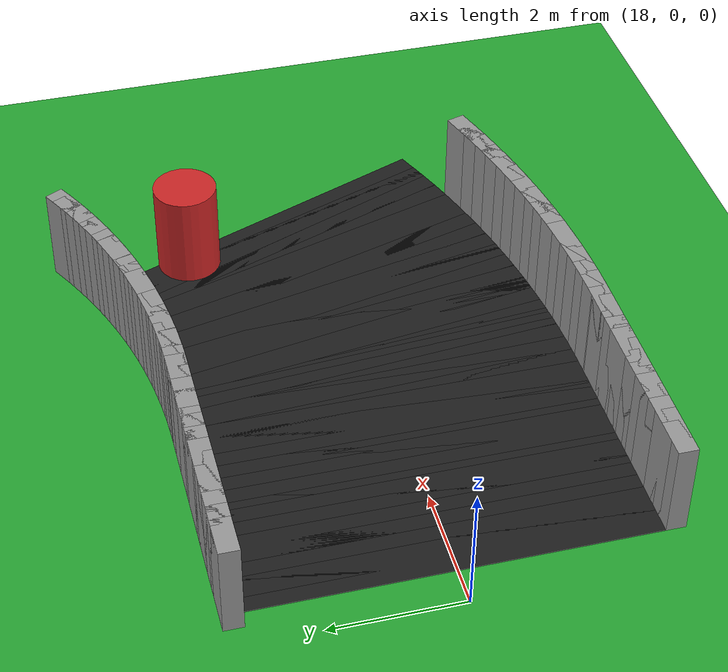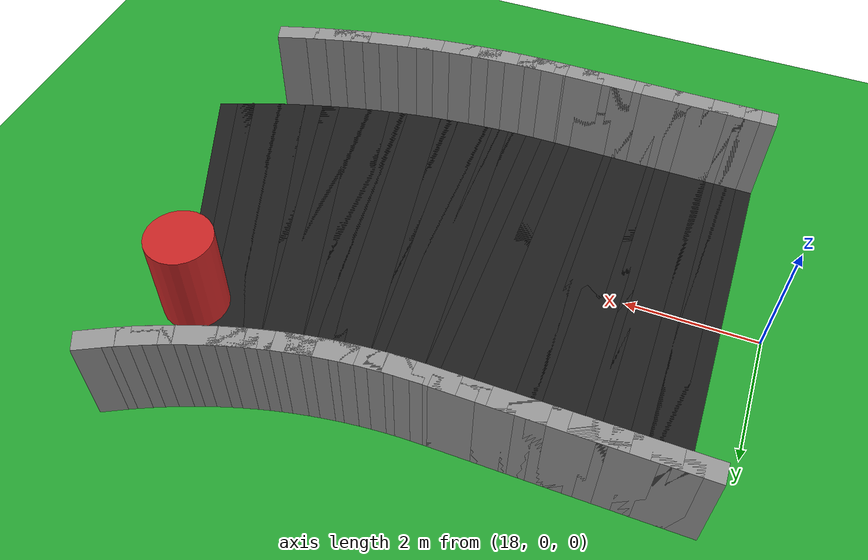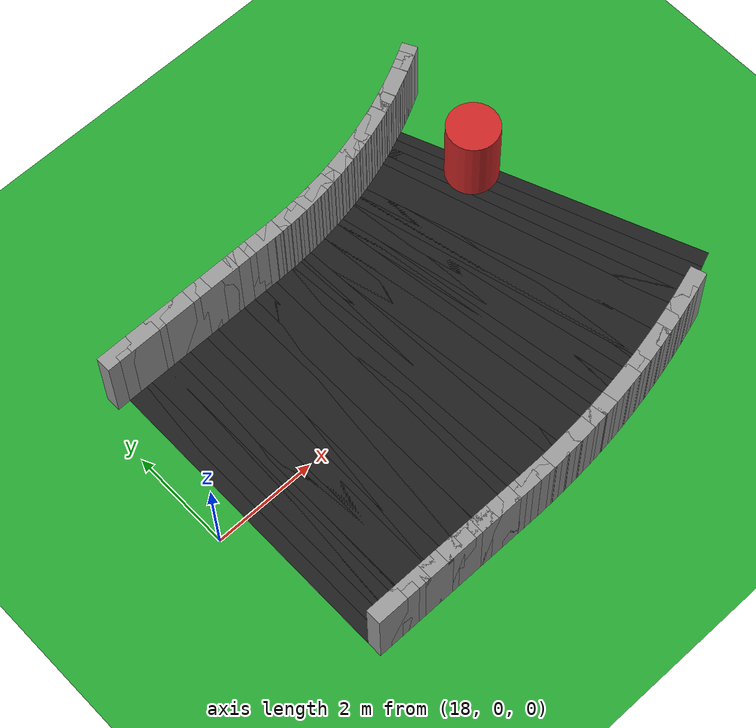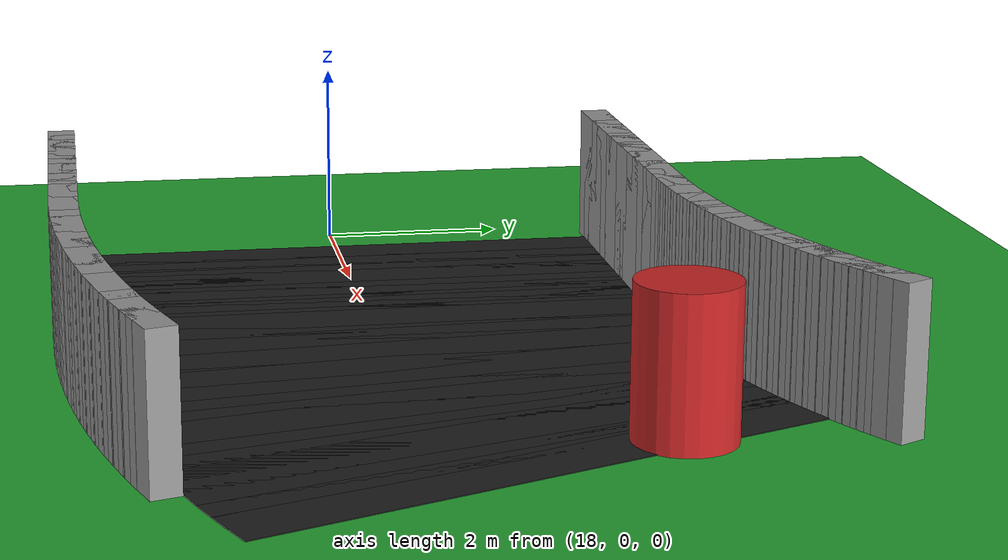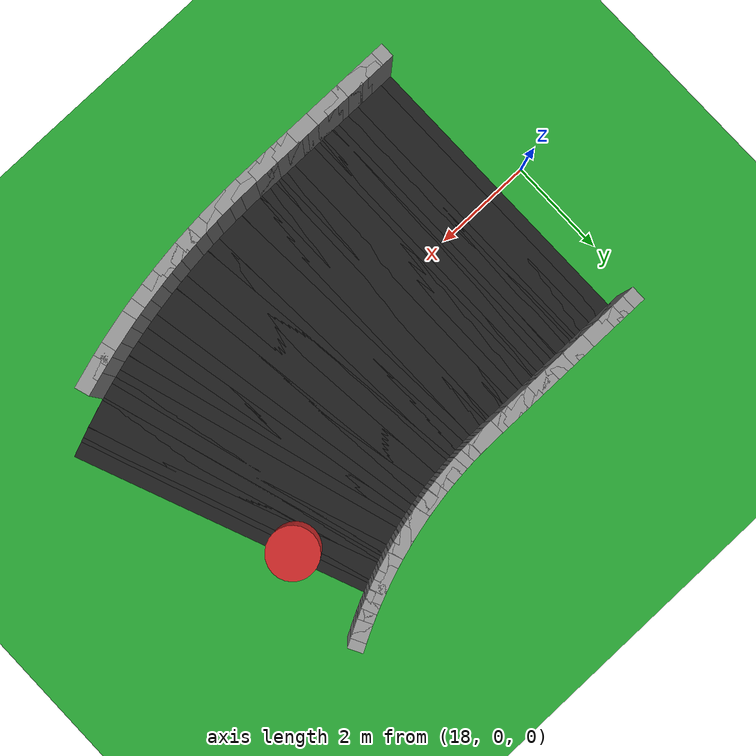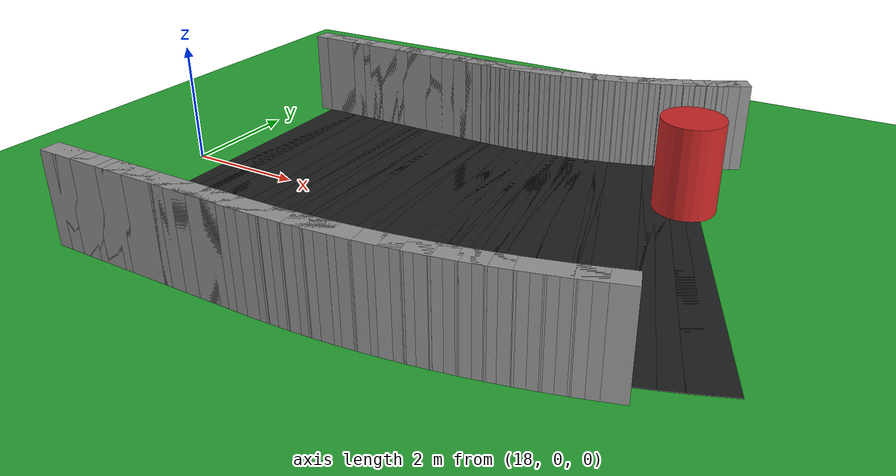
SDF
<sdf version="1.6">
 <world name="obstacle_asymturn">
  <include><uri>model://sun</uri></include>
  <model name="ground_plane">
   <static>true</static>
   <link name="link">
    <collision name="collision">
     <surface><friction><ode><mu>100</mu><mu2>50</mu2></ode></friction></surface>
     <geometry><plane><normal>0 0 1</normal><size>120 120</size></plane></geometry>
    </collision>
    <visual name="visual">
     <geometry><plane><normal>0 0 1</normal><size>120 120</size></plane></geometry>
     <material>
      <script><uri>file://media/materials/scripts/gazebo.material</uri><name>Gazebo/Green</name></script>
     </material>
    </visual>
   </link>
  </model>
  <model name="curbL_74">
   <static>true</static>
   <pose>18.625 3.150 0.750 0 0 0.00000</pose>
   <link name="link">
    <collision name="collision"><geometry><box><size>0.610 0.300 1.500</size></box></geometry></collision>
    <visual name="visual">
     <geometry><box><size>0.610 0.300 1.500</size></box></geometry>
     <material>
      <script><uri>file://media/materials/scripts/gazebo.material</uri><name>Gazebo/Grey</name></script>
     </material>
    </visual>
   </link>
  </model>
  <model name="asphalt_75">
   <static>true</static>
   <pose>18.875 0.000 0.005 0 0 0.00000</pose>
   <link name="link">
    <visual name="visual">
     <geometry><box><size>0.610 6.000 0.010</size></box></geometry>
     <material>
      <script><uri>file://media/materials/scripts/gazebo.material</uri><name>Gazebo/Black</name></script>
     </material>
    </visual>
   </link>
  </model>
  <model name="curbL_75">
   <static>true</static>
   <pose>18.875 3.150 0.750 0 0 0.00000</pose>
   <link name="link">
    <collision name="collision"><geometry><box><size>0.610 0.300 1.500</size></box></geometry></collision>
    <visual name="visual">
     <geometry><box><size>0.610 0.300 1.500</size></box></geometry>
     <material>
      <script><uri>file://media/materials/scripts/gazebo.material</uri><name>Gazebo/Grey</name></script>
     </material>
    </visual>
   </link>
  </model>
  <model name="curbR_75">
   <static>true</static>
   <pose>18.875 -3.150 0.750 0 0 0.00000</pose>
   <link name="link">
    <collision name="collision"><geometry><box><size>0.610 0.300 1.500</size></box></geometry></collision>
    <visual name="visual">
     <geometry><box><size>0.610 0.300 1.500</size></box></geometry>
     <material>
      <script><uri>file://media/materials/scripts/gazebo.material</uri><name>Gazebo/Grey</name></script>
     </material>
    </visual>
   </link>
  </model>
  <model name="asphalt_76">
   <static>true</static>
   <pose>19.125 0.000 0.005 0 0 0.00000</pose>
   <link name="link">
    <visual name="visual">
     <geometry><box><size>0.610 6.000 0.010</size></box></geometry>
     <material>
      <script><uri>file://media/materials/scripts/gazebo.material</uri><name>Gazebo/Black</name></script>
     </material>
    </visual>
   </link>
  </model>
  <model name="curbL_76">
   <static>true</static>
   <pose>19.125 3.150 0.750 0 0 0.00000</pose>
   <link name="link">
    <collision name="collision"><geometry><box><size>0.610 0.300 1.500</size></box></geometry></collision>
    <visual name="visual">
     <geometry><box><size>0.610 0.300 1.500</size></box></geometry>
     <material>
      <script><uri>file://media/materials/scripts/gazebo.material</uri><name>Gazebo/Grey</name></script>
     </material>
    </visual>
   </link>
  </model>
  <model name="curbR_76">
   <static>true</static>
   <pose>19.125 -3.150 0.750 0 0 0.00000</pose>
   <link name="link">
    <collision name="collision"><geometry><box><size>0.610 0.300 1.500</size></box></geometry></collision>
    <visual name="visual">
     <geometry><box><size>0.610 0.300 1.500</size></box></geometry>
     <material>
      <script><uri>file://media/materials/scripts/gazebo.material</uri><name>Gazebo/Grey</name></script>
     </material>
    </visual>
   </link>
  </model>
  <model name="asphalt_77">
   <static>true</static>
   <pose>19.375 0.000 0.005 0 0 0.00000</pose>
   <link name="link">
    <visual name="visual">
     <geometry><box><size>0.610 6.000 0.010</size></box></geometry>
     <material>
      <script><uri>file://media/materials/scripts/gazebo.material</uri><name>Gazebo/Black</name></script>
     </material>
    </visual>
   </link>
  </model>
  <model name="curbL_77">
   <static>true</static>
   <pose>19.375 3.150 0.750 0 0 0.00000</pose>
   <link name="link">
    <collision name="collision"><geometry><box><size>0.610 0.300 1.500</size></box></geometry></collision>
    <visual name="visual">
     <geometry><box><size>0.610 0.300 1.500</size></box></geometry>
     <material>
      <script><uri>file://media/materials/scripts/gazebo.material</uri><name>Gazebo/Grey</name></script>
     </material>
    </visual>
   </link>
  </model>
  <model name="curbR_77">
   <static>true</static>
   <pose>19.375 -3.150 0.750 0 0 0.00000</pose>
   <link name="link">
    <collision name="collision"><geometry><box><size>0.610 0.300 1.500</size></box></geometry></collision>
    <visual name="visual">
     <geometry><box><size>0.610 0.300 1.500</size></box></geometry>
     <material>
      <script><uri>file://media/materials/scripts/gazebo.material</uri><name>Gazebo/Grey</name></script>
     </material>
    </visual>
   </link>
  </model>
  <model name="asphalt_78">
   <static>true</static>
   <pose>19.625 0.000 0.005 0 0 0.00000</pose>
   <link name="link">
    <visual name="visual">
     <geometry><box><size>0.610 6.000 0.010</size></box></geometry>
     <material>
      <script><uri>file://media/materials/scripts/gazebo.material</uri><name>Gazebo/Black</name></script>
     </material>
    </visual>
   </link>
  </model>
  <model name="curbL_78">
   <static>true</static>
   <pose>19.625 3.150 0.750 0 0 0.00000</pose>
   <link name="link">
    <collision name="collision"><geometry><box><size>0.610 0.300 1.500</size></box></geometry></collision>
    <visual name="visual">
     <geometry><box><size>0.610 0.300 1.500</size></box></geometry>
     <material>
      <script><uri>file://media/materials/scripts/gazebo.material</uri><name>Gazebo/Grey</name></script>
     </material>
    </visual>
   </link>
  </model>
  <model name="curbR_78">
   <static>true</static>
   <pose>19.625 -3.150 0.750 0 0 0.00000</pose>
   <link name="link">
    <collision name="collision"><geometry><box><size>0.610 0.300 1.500</size></box></geometry></collision>
    <visual name="visual">
     <geometry><box><size>0.610 0.300 1.500</size></box></geometry>
     <material>
      <script><uri>file://media/materials/scripts/gazebo.material</uri><name>Gazebo/Grey</name></script>
     </material>
    </visual>
   </link>
  </model>
  <model name="asphalt_79">
   <static>true</static>
   <pose>19.875 0.000 0.005 0 0 0.00000</pose>
   <link name="link">
    <visual name="visual">
     <geometry><box><size>0.610 6.000 0.010</size></box></geometry>
     <material>
      <script><uri>file://media/materials/scripts/gazebo.material</uri><name>Gazebo/Black</name></script>
     </material>
    </visual>
   </link>
  </model>
  <model name="curbL_79">
   <static>true</static>
   <pose>19.875 3.150 0.750 0 0 0.00000</pose>
   <link name="link">
    <collision name="collision"><geometry><box><size>0.610 0.300 1.500</size></box></geometry></collision>
    <visual name="visual">
     <geometry><box><size>0.610 0.300 1.500</size></box></geometry>
     <material>
      <script><uri>file://media/materials/scripts/gazebo.material</uri><name>Gazebo/Grey</name></script>
     </material>
    </visual>
   </link>
  </model>
  <model name="curbR_79">
   <static>true</static>
   <pose>19.875 -3.150 0.750 0 0 0.00000</pose>
   <link name="link">
    <collision name="collision"><geometry><box><size>0.610 0.300 1.500</size></box></geometry></collision>
    <visual name="visual">
     <geometry><box><size>0.610 0.300 1.500</size></box></geometry>
     <material>
      <script><uri>file://media/materials/scripts/gazebo.material</uri><name>Gazebo/Grey</name></script>
     </material>
    </visual>
   </link>
  </model>
  <model name="asphalt_80">
   <static>true</static>
   <pose>20.125 0.000 0.005 0 0 0.00000</pose>
   <link name="link">
    <visual name="visual">
     <geometry><box><size>0.610 6.000 0.010</size></box></geometry>
     <material>
      <script><uri>file://media/materials/scripts/gazebo.material</uri><name>Gazebo/Black</name></script>
     </material>
    </visual>
   </link>
  </model>
  <model name="curbL_80">
   <static>true</static>
   <pose>20.125 3.150 0.750 0 0 0.00000</pose>
   <link name="link">
    <collision name="collision"><geometry><box><size>0.610 0.300 1.500</size></box></geometry></collision>
    <visual name="visual">
     <geometry><box><size>0.610 0.300 1.500</size></box></geometry>
     <material>
      <script><uri>file://media/materials/scripts/gazebo.material</uri><name>Gazebo/Grey</name></script>
     </material>
    </visual>
   </link>
  </model>
  <model name="curbR_80">
   <static>true</static>
   <pose>20.125 -3.150 0.750 0 0 0.00000</pose>
   <link name="link">
    <collision name="collision"><geometry><box><size>0.610 0.300 1.500</size></box></geometry></collision>
    <visual name="visual">
     <geometry><box><size>0.610 0.300 1.500</size></box></geometry>
     <material>
      <script><uri>file://media/materials/scripts/gazebo.material</uri><name>Gazebo/Grey</name></script>
     </material>
    </visual>
   </link>
  </model>
  <model name="asphalt_81">
   <static>true</static>
   <pose>20.375 0.000 0.005 0 0 0.00000</pose>
   <link name="link">
    <visual name="visual">
     <geometry><box><size>0.610 6.000 0.010</size></box></geometry>
     <material>
      <script><uri>file://media/materials/scripts/gazebo.material</uri><name>Gazebo/Black</name></script>
     </material>
    </visual>
   </link>
  </model>
  <model name="curbL_81">
   <static>true</static>
   <pose>20.375 3.150 0.750 0 0 0.00000</pose>
   <link name="link">
    <collision name="collision"><geometry><box><size>0.610 0.300 1.500</size></box></geometry></collision>
    <visual name="visual">
     <geometry><box><size>0.610 0.300 1.500</size></box></geometry>
     <material>
      <script><uri>file://media/materials/scripts/gazebo.material</uri><name>Gazebo/Grey</name></script>
     </material>
    </visual>
   </link>
  </model>
  <model name="curbR_81">
   <static>true</static>
   <pose>20.375 -3.150 0.750 0 0 0.00000</pose>
   <link name="link">
    <collision name="collision"><geometry><box><size>0.610 0.300 1.500</size></box></geometry></collision>
    <visual name="visual">
     <geometry><box><size>0.610 0.300 1.500</size></box></geometry>
     <material>
      <script><uri>file://media/materials/scripts/gazebo.material</uri><name>Gazebo/Grey</name></script>
     </material>
    </visual>
   </link>
  </model>
  <model name="asphalt_82">
   <static>true</static>
   <pose>20.625 0.000 0.005 0 0 0.00000</pose>
   <link name="link">
    <visual name="visual">
     <geometry><box><size>0.610 6.000 0.010</size></box></geometry>
     <material>
      <script><uri>file://media/materials/scripts/gazebo.material</uri><name>Gazebo/Black</name></script>
     </material>
    </visual>
   </link>
  </model>
  <model name="curbL_82">
   <static>true</static>
   <pose>20.625 3.150 0.750 0 0 0.00000</pose>
   <link name="link">
    <collision name="collision"><geometry><box><size>0.610 0.300 1.500</size></box></geometry></collision>
    <visual name="visual">
     <geometry><box><size>0.610 0.300 1.500</size></box></geometry>
     <material>
      <script><uri>file://media/materials/scripts/gazebo.material</uri><name>Gazebo/Grey</name></script>
     </material>
    </visual>
   </link>
  </model>
  <model name="curbR_82">
   <static>true</static>
   <pose>20.625 -3.150 0.750 0 0 0.00000</pose>
   <link name="link">
    <collision name="collision"><geometry><box><size>0.610 0.300 1.500</size></box></geometry></collision>
    <visual name="visual">
     <geometry><box><size>0.610 0.300 1.500</size></box></geometry>
     <material>
      <script><uri>file://media/materials/scripts/gazebo.material</uri><name>Gazebo/Grey</name></script>
     </material>
    </visual>
   </link>
  </model>
  <model name="asphalt_83">
   <static>true</static>
   <pose>20.875 0.000 0.005 0 0 0.00000</pose>
   <link name="link">
    <visual name="visual">
     <geometry><box><size>0.610 6.000 0.010</size></box></geometry>
     <material>
      <script><uri>file://media/materials/scripts/gazebo.material</uri><name>Gazebo/Black</name></script>
     </material>
    </visual>
   </link>
  </model>
  <model name="curbL_83">
   <static>true</static>
   <pose>20.875 3.150 0.750 0 0 0.00000</pose>
   <link name="link">
    <collision name="collision"><geometry><box><size>0.610 0.300 1.500</size></box></geometry></collision>
    <visual name="visual">
     <geometry><box><size>0.610 0.300 1.500</size></box></geometry>
     <material>
      <script><uri>file://media/materials/scripts/gazebo.material</uri><name>Gazebo/Grey</name></script>
     </material>
    </visual>
   </link>
  </model>
  <model name="curbR_83">
   <static>true</static>
   <pose>20.875 -3.150 0.750 0 0 0.00000</pose>
   <link name="link">
    <collision name="collision"><geometry><box><size>0.610 0.300 1.500</size></box></geometry></collision>
    <visual name="visual">
     <geometry><box><size>0.610 0.300 1.500</size></box></geometry>
     <material>
      <script><uri>file://media/materials/scripts/gazebo.material</uri><name>Gazebo/Grey</name></script>
     </material>
    </visual>
   </link>
  </model>
  <model name="asphalt_84">
   <static>true</static>
   <pose>21.125 0.000 0.005 0 0 0.00000</pose>
   <link name="link">
    <visual name="visual">
     <geometry><box><size>0.610 6.000 0.010</size></box></geometry>
     <material>
      <script><uri>file://media/materials/scripts/gazebo.material</uri><name>Gazebo/Black</name></script>
     </material>
    </visual>
   </link>
  </model>
  <model name="curbL_84">
   <static>true</static>
   <pose>21.125 3.150 0.750 0 0 0.00000</pose>
   <link name="link">
    <collision name="collision"><geometry><box><size>0.610 0.300 1.500</size></box></geometry></collision>
    <visual name="visual">
     <geometry><box><size>0.610 0.300 1.500</size></box></geometry>
     <material>
      <script><uri>file://media/materials/scripts/gazebo.material</uri><name>Gazebo/Grey</name></script>
     </material>
    </visual>
   </link>
  </model>
  <model name="curbR_84">
   <static>true</static>
   <pose>21.125 -3.150 0.750 0 0 0.00000</pose>
   <link name="link">
    <collision name="collision"><geometry><box><size>0.610 0.300 1.500</size></box></geometry></collision>
    <visual name="visual">
     <geometry><box><size>0.610 0.300 1.500</size></box></geometry>
     <material>
      <script><uri>file://media/materials/scripts/gazebo.material</uri><name>Gazebo/Grey</name></script>
     </material>
    </visual>
   </link>
  </model>
  <model name="asphalt_85">
   <static>true</static>
   <pose>21.375 0.000 0.005 0 0 0.00000</pose>
   <link name="link">
    <visual name="visual">
     <geometry><box><size>0.610 6.000 0.010</size></box></geometry>
     <material>
      <script><uri>file://media/materials/scripts/gazebo.material</uri><name>Gazebo/Black</name></script>
     </material>
    </visual>
   </link>
  </model>
  <model name="curbL_85">
   <static>true</static>
   <pose>21.375 3.150 0.750 0 0 0.00000</pose>
   <link name="link">
    <collision name="collision"><geometry><box><size>0.610 0.300 1.500</size></box></geometry></collision>
    <visual name="visual">
     <geometry><box><size>0.610 0.300 1.500</size></box></geometry>
     <material>
      <script><uri>file://media/materials/scripts/gazebo.material</uri><name>Gazebo/Grey</name></script>
     </material>
    </visual>
   </link>
  </model>
  <model name="curbR_85">
   <static>true</static>
   <pose>21.375 -3.150 0.750 0 0 0.00000</pose>
   <link name="link">
    <collision name="collision"><geometry><box><size>0.610 0.300 1.500</size></box></geometry></collision>
    <visual name="visual">
     <geometry><box><size>0.610 0.300 1.500</size></box></geometry>
     <material>
      <script><uri>file://media/materials/scripts/gazebo.material</uri><name>Gazebo/Grey</name></script>
     </material>
    </visual>
   </link>
  </model>
  <model name="asphalt_86">
   <static>true</static>
   <pose>21.625 0.000 0.005 0 0 0.00000</pose>
   <link name="link">
    <visual name="visual">
     <geometry><box><size>0.610 6.000 0.010</size></box></geometry>
     <material>
      <script><uri>file://media/materials/scripts/gazebo.material</uri><name>Gazebo/Black</name></script>
     </material>
    </visual>
   </link>
  </model>
  <model name="curbL_86">
   <static>true</static>
   <pose>21.625 3.150 0.750 0 0 0.00000</pose>
   <link name="link">
    <collision name="collision"><geometry><box><size>0.610 0.300 1.500</size></box></geometry></collision>
    <visual name="visual">
     <geometry><box><size>0.610 0.300 1.500</size></box></geometry>
     <material>
      <script><uri>file://media/materials/scripts/gazebo.material</uri><name>Gazebo/Grey</name></script>
     </material>
    </visual>
   </link>
  </model>
  <model name="curbR_86">
   <static>true</static>
   <pose>21.625 -3.150 0.750 0 0 0.00000</pose>
   <link name="link">
    <collision name="collision"><geometry><box><size>0.610 0.300 1.500</size></box></geometry></collision>
    <visual name="visual">
     <geometry><box><size>0.610 0.300 1.500</size></box></geometry>
     <material>
      <script><uri>file://media/materials/scripts/gazebo.material</uri><name>Gazebo/Grey</name></script>
     </material>
    </visual>
   </link>
  </model>
  <model name="asphalt_87">
   <static>true</static>
   <pose>21.875 0.000 0.005 0 0 0.00000</pose>
   <link name="link">
    <visual name="visual">
     <geometry><box><size>0.610 6.000 0.010</size></box></geometry>
     <material>
      <script><uri>file://media/materials/scripts/gazebo.material</uri><name>Gazebo/Black</name></script>
     </material>
    </visual>
   </link>
  </model>
  <model name="curbL_87">
   <static>true</static>
   <pose>21.875 3.150 0.750 0 0 0.00000</pose>
   <link name="link">
    <collision name="collision"><geometry><box><size>0.610 0.300 1.500</size></box></geometry></collision>
    <visual name="visual">
     <geometry><box><size>0.610 0.300 1.500</size></box></geometry>
     <material>
      <script><uri>file://media/materials/scripts/gazebo.material</uri><name>Gazebo/Grey</name></script>
     </material>
    </visual>
   </link>
  </model>
  <model name="curbR_87">
   <static>true</static>
   <pose>21.875 -3.150 0.750 0 0 0.00000</pose>
   <link name="link">
    <collision name="collision"><geometry><box><size>0.610 0.300 1.500</size></box></geometry></collision>
    <visual name="visual">
     <geometry><box><size>0.610 0.300 1.500</size></box></geometry>
     <material>
      <script><uri>file://media/materials/scripts/gazebo.material</uri><name>Gazebo/Grey</name></script>
     </material>
    </visual>
   </link>
  </model>
  <model name="asphalt_88">
   <static>true</static>
   <pose>22.124 0.001 0.005 0 0 0.01033</pose>
   <link name="link">
    <visual name="visual">
     <geometry><box><size>0.608 6.000 0.010</size></box></geometry>
     <material>
      <script><uri>file://media/materials/scripts/gazebo.material</uri><name>Gazebo/Black</name></script>
     </material>
    </visual>
   </link>
  </model>
  <model name="curbL_88">
   <static>true</static>
   <pose>22.091 3.151 0.750 0 0 0.01033</pose>
   <link name="link">
    <collision name="collision"><geometry><box><size>0.543 0.300 1.500</size></box></geometry></collision>
    <visual name="visual">
     <geometry><box><size>0.543 0.300 1.500</size></box></geometry>
     <material>
      <script><uri>file://media/materials/scripts/gazebo.material</uri><name>Gazebo/Grey</name></script>
     </material>
    </visual>
   </link>
  </model>
  <model name="curbR_88">
   <static>true</static>
   <pose>22.157 -3.148 0.750 0 0 0.01033</pose>
   <link name="link">
    <collision name="collision"><geometry><box><size>0.673 0.300 1.500</size></box></geometry></collision>
    <visual name="visual">
     <geometry><box><size>0.673 0.300 1.500</size></box></geometry>
     <material>
      <script><uri>file://media/materials/scripts/gazebo.material</uri><name>Gazebo/Grey</name></script>
     </material>
    </visual>
   </link>
  </model>
  <model name="asphalt_89">
   <static>true</static>
   <pose>22.372 0.006 0.005 0 0 0.03100</pose>
   <link name="link">
    <visual name="visual">
     <geometry><box><size>0.608 6.000 0.010</size></box></geometry>
     <material>
      <script><uri>file://media/materials/scripts/gazebo.material</uri><name>Gazebo/Black</name></script>
     </material>
    </visual>
   </link>
  </model>
  <model name="curbL_89">
   <static>true</static>
   <pose>22.274 3.155 0.750 0 0 0.03100</pose>
   <link name="link">
    <collision name="collision"><geometry><box><size>0.543 0.300 1.500</size></box></geometry></collision>
    <visual name="visual">
     <geometry><box><size>0.543 0.300 1.500</size></box></geometry>
     <material>
      <script><uri>file://media/materials/scripts/gazebo.material</uri><name>Gazebo/Grey</name></script>
     </material>
    </visual>
   </link>
  </model>
  <model name="curbR_89">
   <static>true</static>
   <pose>22.470 -3.142 0.750 0 0 0.03100</pose>
   <link name="link">
    <collision name="collision"><geometry><box><size>0.673 0.300 1.500</size></box></geometry></collision>
    <visual name="visual">
     <geometry><box><size>0.673 0.300 1.500</size></box></geometry>
     <material>
      <script><uri>file://media/materials/scripts/gazebo.material</uri><name>Gazebo/Grey</name></script>
     </material>
    </visual>
   </link>
  </model>
  <model name="asphalt_90">
   <static>true</static>
   <pose>22.620 0.017 0.005 0 0 0.05167</pose>
   <link name="link">
    <visual name="visual">
     <geometry><box><size>0.608 6.000 0.010</size></box></geometry>
     <material>
      <script><uri>file://media/materials/scripts/gazebo.material</uri><name>Gazebo/Black</name></script>
     </material>
    </visual>
   </link>
  </model>
  <model name="curbL_90">
   <static>true</static>
   <pose>22.457 3.162 0.750 0 0 0.05167</pose>
   <link name="link">
    <collision name="collision"><geometry><box><size>0.543 0.300 1.500</size></box></geometry></collision>
    <visual name="visual">
     <geometry><box><size>0.543 0.300 1.500</size></box></geometry>
     <material>
      <script><uri>file://media/materials/scripts/gazebo.material</uri><name>Gazebo/Grey</name></script>
     </material>
    </visual>
   </link>
  </model>
  <model name="curbR_90">
   <static>true</static>
   <pose>22.782 -3.129 0.750 0 0 0.05167</pose>
   <link name="link">
    <collision name="collision"><geometry><box><size>0.673 0.300 1.500</size></box></geometry></collision>
    <visual name="visual">
     <geometry><box><size>0.673 0.300 1.500</size></box></geometry>
     <material>
      <script><uri>file://media/materials/scripts/gazebo.material</uri><name>Gazebo/Grey</name></script>
     </material>
    </visual>
   </link>
  </model>
  <model name="asphalt_91">
   <static>true</static>
   <pose>22.867 0.032 0.005 0 0 0.07234</pose>
   <link name="link">
    <visual name="visual">
     <geometry><box><size>0.608 6.000 0.010</size></box></geometry>
     <material>
      <script><uri>file://media/materials/scripts/gazebo.material</uri><name>Gazebo/Black</name></script>
     </material>
    </visual>
   </link>
  </model>
  <model name="curbL_91">
   <static>true</static>
   <pose>22.640 3.174 0.750 0 0 0.07234</pose>
   <link name="link">
    <collision name="collision"><geometry><box><size>0.543 0.300 1.500</size></box></geometry></collision>
    <visual name="visual">
     <geometry><box><size>0.543 0.300 1.500</size></box></geometry>
     <material>
      <script><uri>file://media/materials/scripts/gazebo.material</uri><name>Gazebo/Grey</name></script>
     </material>
    </visual>
   </link>
  </model>
  <model name="curbR_91">
   <static>true</static>
   <pose>23.095 -3.110 0.750 0 0 0.07234</pose>
   <link name="link">
    <collision name="collision"><geometry><box><size>0.673 0.300 1.500</size></box></geometry></collision>
    <visual name="visual">
     <geometry><box><size>0.673 0.300 1.500</size></box></geometry>
     <material>
      <script><uri>file://media/materials/scripts/gazebo.material</uri><name>Gazebo/Grey</name></script>
     </material>
    </visual>
   </link>
  </model>
  <model name="asphalt_92">
   <static>true</static>
   <pose>23.114 0.053 0.005 0 0 0.09301</pose>
   <link name="link">
    <visual name="visual">
     <geometry><box><size>0.608 6.000 0.010</size></box></geometry>
     <material>
      <script><uri>file://media/materials/scripts/gazebo.material</uri><name>Gazebo/Black</name></script>
     </material>
    </visual>
   </link>
  </model>
  <model name="curbL_92">
   <static>true</static>
   <pose>22.822 3.189 0.750 0 0 0.09301</pose>
   <link name="link">
    <collision name="collision"><geometry><box><size>0.543 0.300 1.500</size></box></geometry></collision>
    <visual name="visual">
     <geometry><box><size>0.543 0.300 1.500</size></box></geometry>
     <material>
      <script><uri>file://media/materials/scripts/gazebo.material</uri><name>Gazebo/Grey</name></script>
     </material>
    </visual>
   </link>
  </model>
  <model name="curbR_92">
   <static>true</static>
   <pose>23.407 -3.084 0.750 0 0 0.09301</pose>
   <link name="link">
    <collision name="collision"><geometry><box><size>0.673 0.300 1.500</size></box></geometry></collision>
    <visual name="visual">
     <geometry><box><size>0.673 0.300 1.500</size></box></geometry>
     <material>
      <script><uri>file://media/materials/scripts/gazebo.material</uri><name>Gazebo/Grey</name></script>
     </material>
    </visual>
   </link>
  </model>
  <model name="asphalt_93">
   <static>true</static>
   <pose>23.361 0.078 0.005 0 0 0.11368</pose>
   <link name="link">
    <visual name="visual">
     <geometry><box><size>0.608 6.000 0.010</size></box></geometry>
     <material>
      <script><uri>file://media/materials/scripts/gazebo.material</uri><name>Gazebo/Black</name></script>
     </material>
    </visual>
   </link>
  </model>
  <model name="curbL_93">
   <static>true</static>
   <pose>23.004 3.208 0.750 0 0 0.11368</pose>
   <link name="link">
    <collision name="collision"><geometry><box><size>0.543 0.300 1.500</size></box></geometry></collision>
    <visual name="visual">
     <geometry><box><size>0.543 0.300 1.500</size></box></geometry>
     <material>
      <script><uri>file://media/materials/scripts/gazebo.material</uri><name>Gazebo/Grey</name></script>
     </material>
    </visual>
   </link>
  </model>
  <model name="curbR_93">
   <static>true</static>
   <pose>23.718 -3.051 0.750 0 0 0.11368</pose>
   <link name="link">
    <collision name="collision"><geometry><box><size>0.673 0.300 1.500</size></box></geometry></collision>
    <visual name="visual">
     <geometry><box><size>0.673 0.300 1.500</size></box></geometry>
     <material>
      <script><uri>file://media/materials/scripts/gazebo.material</uri><name>Gazebo/Grey</name></script>
     </material>
    </visual>
   </link>
  </model>
  <model name="asphalt_94">
   <static>true</static>
   <pose>23.607 0.109 0.005 0 0 0.13434</pose>
   <link name="link">
    <visual name="visual">
     <geometry><box><size>0.608 6.000 0.010</size></box></geometry>
     <material>
      <script><uri>file://media/materials/scripts/gazebo.material</uri><name>Gazebo/Black</name></script>
     </material>
    </visual>
   </link>
  </model>
  <model name="curbL_94">
   <static>true</static>
   <pose>23.185 3.230 0.750 0 0 0.13434</pose>
   <link name="link">
    <collision name="collision"><geometry><box><size>0.543 0.300 1.500</size></box></geometry></collision>
    <visual name="visual">
     <geometry><box><size>0.543 0.300 1.500</size></box></geometry>
     <material>
      <script><uri>file://media/materials/scripts/gazebo.material</uri><name>Gazebo/Grey</name></script>
     </material>
    </visual>
   </link>
  </model>
  <model name="curbR_94">
   <static>true</static>
   <pose>24.029 -3.013 0.750 0 0 0.13434</pose>
   <link name="link">
    <collision name="collision"><geometry><box><size>0.673 0.300 1.500</size></box></geometry></collision>
    <visual name="visual">
     <geometry><box><size>0.673 0.300 1.500</size></box></geometry>
     <material>
      <script><uri>file://media/materials/scripts/gazebo.material</uri><name>Gazebo/Grey</name></script>
     </material>
    </visual>
   </link>
  </model>
  <model name="asphalt_95">
   <static>true</static>
   <pose>23.853 0.145 0.005 0 0 0.15501</pose>
   <link name="link">
    <visual name="visual">
     <geometry><box><size>0.608 6.000 0.010</size></box></geometry>
     <material>
      <script><uri>file://media/materials/scripts/gazebo.material</uri><name>Gazebo/Black</name></script>
     </material>
    </visual>
   </link>
  </model>
  <model name="curbL_95">
   <static>true</static>
   <pose>23.366 3.257 0.750 0 0 0.15501</pose>
   <link name="link">
    <collision name="collision"><geometry><box><size>0.543 0.300 1.500</size></box></geometry></collision>
    <visual name="visual">
     <geometry><box><size>0.543 0.300 1.500</size></box></geometry>
     <material>
      <script><uri>file://media/materials/scripts/gazebo.material</uri><name>Gazebo/Grey</name></script>
     </material>
    </visual>
   </link>
  </model>
  <model name="curbR_95">
   <static>true</static>
   <pose>24.339 -2.968 0.750 0 0 0.15501</pose>
   <link name="link">
    <collision name="collision"><geometry><box><size>0.673 0.300 1.500</size></box></geometry></collision>
    <visual name="visual">
     <geometry><box><size>0.673 0.300 1.500</size></box></geometry>
     <material>
      <script><uri>file://media/materials/scripts/gazebo.material</uri><name>Gazebo/Grey</name></script>
     </material>
    </visual>
   </link>
  </model>
  <model name="asphalt_96">
   <static>true</static>
   <pose>24.097 0.185 0.005 0 0 0.17568</pose>
   <link name="link">
    <visual name="visual">
     <geometry><box><size>0.608 6.000 0.010</size></box></geometry>
     <material>
      <script><uri>file://media/materials/scripts/gazebo.material</uri><name>Gazebo/Black</name></script>
     </material>
    </visual>
   </link>
  </model>
  <model name="curbL_96">
   <static>true</static>
   <pose>23.547 3.287 0.750 0 0 0.17568</pose>
   <link name="link">
    <collision name="collision"><geometry><box><size>0.543 0.300 1.500</size></box></geometry></collision>
    <visual name="visual">
     <geometry><box><size>0.543 0.300 1.500</size></box></geometry>
     <material>
      <script><uri>file://media/materials/scripts/gazebo.material</uri><name>Gazebo/Grey</name></script>
     </material>
    </visual>
   </link>
  </model>
  <model name="curbR_96">
   <static>true</static>
   <pose>24.648 -2.916 0.750 0 0 0.17568</pose>
   <link name="link">
    <collision name="collision"><geometry><box><size>0.673 0.300 1.500</size></box></geometry></collision>
    <visual name="visual">
     <geometry><box><size>0.673 0.300 1.500</size></box></geometry>
     <material>
      <script><uri>file://media/materials/scripts/gazebo.material</uri><name>Gazebo/Grey</name></script>
     </material>
    </visual>
   </link>
  </model>
  <model name="asphalt_97">
   <static>true</static>
   <pose>24.341 0.231 0.005 0 0 0.19635</pose>
   <link name="link">
    <visual name="visual">
     <geometry><box><size>0.608 6.000 0.010</size></box></geometry>
     <material>
      <script><uri>file://media/materials/scripts/gazebo.material</uri><name>Gazebo/Black</name></script>
     </material>
    </visual>
   </link>
  </model>
  <model name="curbL_97">
   <static>true</static>
   <pose>23.726 3.321 0.750 0 0 0.19635</pose>
   <link name="link">
    <collision name="collision"><geometry><box><size>0.543 0.300 1.500</size></box></geometry></collision>
    <visual name="visual">
     <geometry><box><size>0.543 0.300 1.500</size></box></geometry>
     <material>
      <script><uri>file://media/materials/scripts/gazebo.material</uri><name>Gazebo/Grey</name></script>
     </material>
    </visual>
   </link>
  </model>
  <model name="curbR_97">
   <static>true</static>
   <pose>24.956 -2.858 0.750 0 0 0.19635</pose>
   <link name="link">
    <collision name="collision"><geometry><box><size>0.673 0.300 1.500</size></box></geometry></collision>
    <visual name="visual">
     <geometry><box><size>0.673 0.300 1.500</size></box></geometry>
     <material>
      <script><uri>file://media/materials/scripts/gazebo.material</uri><name>Gazebo/Grey</name></script>
     </material>
    </visual>
   </link>
  </model>
  <model name="asphalt_98">
   <static>true</static>
   <pose>24.584 0.282 0.005 0 0 0.21702</pose>
   <link name="link">
    <visual name="visual">
     <geometry><box><size>0.608 6.000 0.010</size></box></geometry>
     <material>
      <script><uri>file://media/materials/scripts/gazebo.material</uri><name>Gazebo/Black</name></script>
     </material>
    </visual>
   </link>
  </model>
  <model name="curbL_98">
   <static>true</static>
   <pose>23.906 3.358 0.750 0 0 0.21702</pose>
   <link name="link">
    <collision name="collision"><geometry><box><size>0.543 0.300 1.500</size></box></geometry></collision>
    <visual name="visual">
     <geometry><box><size>0.543 0.300 1.500</size></box></geometry>
     <material>
      <script><uri>file://media/materials/scripts/gazebo.material</uri><name>Gazebo/Grey</name></script>
     </material>
    </visual>
   </link>
  </model>
  <model name="curbR_98">
   <static>true</static>
   <pose>25.262 -2.794 0.750 0 0 0.21702</pose>
   <link name="link">
    <collision name="collision"><geometry><box><size>0.673 0.300 1.500</size></box></geometry></collision>
    <visual name="visual">
     <geometry><box><size>0.673 0.300 1.500</size></box></geometry>
     <material>
      <script><uri>file://media/materials/scripts/gazebo.material</uri><name>Gazebo/Grey</name></script>
     </material>
    </visual>
   </link>
  </model>
  <model name="asphalt_99">
   <static>true</static>
   <pose>24.825 0.338 0.005 0 0 0.23769</pose>
   <link name="link">
    <visual name="visual">
     <geometry><box><size>0.608 6.000 0.010</size></box></geometry>
     <material>
      <script><uri>file://media/materials/scripts/gazebo.material</uri><name>Gazebo/Black</name></script>
     </material>
    </visual>
   </link>
  </model>
  <model name="curbL_99">
   <static>true</static>
   <pose>24.084 3.399 0.750 0 0 0.23769</pose>
   <link name="link">
    <collision name="collision"><geometry><box><size>0.543 0.300 1.500</size></box></geometry></collision>
    <visual name="visual">
     <geometry><box><size>0.543 0.300 1.500</size></box></geometry>
     <material>
      <script><uri>file://media/materials/scripts/gazebo.material</uri><name>Gazebo/Grey</name></script>
     </material>
    </visual>
   </link>
  </model>
  <model name="curbR_99">
   <static>true</static>
   <pose>25.567 -2.723 0.750 0 0 0.23769</pose>
   <link name="link">
    <collision name="collision"><geometry><box><size>0.673 0.300 1.500</size></box></geometry></collision>
    <visual name="visual">
     <geometry><box><size>0.673 0.300 1.500</size></box></geometry>
     <material>
      <script><uri>file://media/materials/scripts/gazebo.material</uri><name>Gazebo/Grey</name></script>
     </material>
    </visual>
   </link>
  </model>
  <model name="asphalt_100">
   <static>true</static>
   <pose>25.066 0.399 0.005 0 0 0.25835</pose>
   <link name="link">
    <visual name="visual">
     <geometry><box><size>0.608 6.000 0.010</size></box></geometry>
     <material>
      <script><uri>file://media/materials/scripts/gazebo.material</uri><name>Gazebo/Black</name></script>
     </material>
    </visual>
   </link>
  </model>
  <model name="curbL_100">
   <static>true</static>
   <pose>24.261 3.444 0.750 0 0 0.25835</pose>
   <link name="link">
    <collision name="collision"><geometry><box><size>0.543 0.300 1.500</size></box></geometry></collision>
    <visual name="visual">
     <geometry><box><size>0.543 0.300 1.500</size></box></geometry>
     <material>
      <script><uri>file://media/materials/scripts/gazebo.material</uri><name>Gazebo/Grey</name></script>
     </material>
    </visual>
   </link>
  </model>
  <model name="curbR_100">
   <static>true</static>
   <pose>25.871 -2.646 0.750 0 0 0.25835</pose>
   <link name="link">
    <collision name="collision"><geometry><box><size>0.673 0.300 1.500</size></box></geometry></collision>
    <visual name="visual">
     <geometry><box><size>0.673 0.300 1.500</size></box></geometry>
     <material>
      <script><uri>file://media/materials/scripts/gazebo.material</uri><name>Gazebo/Grey</name></script>
     </material>
    </visual>
   </link>
  </model>
  <model name="asphalt_101">
   <static>true</static>
   <pose>25.305 0.465 0.005 0 0 0.27902</pose>
   <link name="link">
    <visual name="visual">
     <geometry><box><size>0.608 6.000 0.010</size></box></geometry>
     <material>
      <script><uri>file://media/materials/scripts/gazebo.material</uri><name>Gazebo/Black</name></script>
     </material>
    </visual>
   </link>
  </model>
  <model name="curbL_101">
   <static>true</static>
   <pose>24.437 3.493 0.750 0 0 0.27902</pose>
   <link name="link">
    <collision name="collision"><geometry><box><size>0.543 0.300 1.500</size></box></geometry></collision>
    <visual name="visual">
     <geometry><box><size>0.543 0.300 1.500</size></box></geometry>
     <material>
      <script><uri>file://media/materials/scripts/gazebo.material</uri><name>Gazebo/Grey</name></script>
     </material>
    </visual>
   </link>
  </model>
  <model name="curbR_101">
   <static>true</static>
   <pose>26.172 -2.563 0.750 0 0 0.27902</pose>
   <link name="link">
    <collision name="collision"><geometry><box><size>0.673 0.300 1.500</size></box></geometry></collision>
    <visual name="visual">
     <geometry><box><size>0.673 0.300 1.500</size></box></geometry>
     <material>
      <script><uri>file://media/materials/scripts/gazebo.material</uri><name>Gazebo/Grey</name></script>
     </material>
    </visual>
   </link>
  </model>
  <model name="asphalt_102">
   <static>true</static>
   <pose>25.543 0.535 0.005 0 0 0.29969</pose>
   <link name="link">
    <visual name="visual">
     <geometry><box><size>0.608 6.000 0.010</size></box></geometry>
     <material>
      <script><uri>file://media/materials/scripts/gazebo.material</uri><name>Gazebo/Black</name></script>
     </material>
    </visual>
   </link>
  </model>
  <model name="curbL_102">
   <static>true</static>
   <pose>24.613 3.545 0.750 0 0 0.29969</pose>
   <link name="link">
    <collision name="collision"><geometry><box><size>0.543 0.300 1.500</size></box></geometry></collision>
    <visual name="visual">
     <geometry><box><size>0.543 0.300 1.500</size></box></geometry>
     <material>
      <script><uri>file://media/materials/scripts/gazebo.material</uri><name>Gazebo/Grey</name></script>
     </material>
    </visual>
   </link>
  </model>
  <model name="curbR_102">
   <static>true</static>
   <pose>26.472 -2.474 0.750 0 0 0.29969</pose>
   <link name="link">
    <collision name="collision"><geometry><box><size>0.673 0.300 1.500</size></box></geometry></collision>
    <visual name="visual">
     <geometry><box><size>0.673 0.300 1.500</size></box></geometry>
     <material>
      <script><uri>file://media/materials/scripts/gazebo.material</uri><name>Gazebo/Grey</name></script>
     </material>
    </visual>
   </link>
  </model>
  <model name="asphalt_103">
   <static>true</static>
   <pose>25.779 0.611 0.005 0 0 0.32036</pose>
   <link name="link">
    <visual name="visual">
     <geometry><box><size>0.608 6.000 0.010</size></box></geometry>
     <material>
      <script><uri>file://media/materials/scripts/gazebo.material</uri><name>Gazebo/Black</name></script>
     </material>
    </visual>
   </link>
  </model>
  <model name="curbL_103">
   <static>true</static>
   <pose>24.787 3.601 0.750 0 0 0.32036</pose>
   <link name="link">
    <collision name="collision"><geometry><box><size>0.543 0.300 1.500</size></box></geometry></collision>
    <visual name="visual">
     <geometry><box><size>0.543 0.300 1.500</size></box></geometry>
     <material>
      <script><uri>file://media/materials/scripts/gazebo.material</uri><name>Gazebo/Grey</name></script>
     </material>
    </visual>
   </link>
  </model>
  <model name="asphalt_104">
   <static>true</static>
   <pose>26.013 0.692 0.005 0 0 0.34103</pose>
   <link name="link">
    <visual name="visual">
     <geometry><box><size>0.608 6.000 0.010</size></box></geometry>
     <material>
      <script><uri>file://media/materials/scripts/gazebo.material</uri><name>Gazebo/Black</name></script>
     </material>
    </visual>
   </link>
  </model>
  <model name="curbL_104">
   <static>true</static>
   <pose>24.960 3.660 0.750 0 0 0.34103</pose>
   <link name="link">
    <collision name="collision"><geometry><box><size>0.543 0.300 1.500</size></box></geometry></collision>
    <visual name="visual">
     <geometry><box><size>0.543 0.300 1.500</size></box></geometry>
     <material>
      <script><uri>file://media/materials/scripts/gazebo.material</uri><name>Gazebo/Grey</name></script>
     </material>
    </visual>
   </link>
  </model>
  <model name="asphalt_105">
   <static>true</static>
   <pose>26.246 0.777 0.005 0 0 0.36170</pose>
   <link name="link">
    <visual name="visual">
     <geometry><box><size>0.608 6.000 0.010</size></box></geometry>
     <material>
      <script><uri>file://media/materials/scripts/gazebo.material</uri><name>Gazebo/Black</name></script>
     </material>
    </visual>
   </link>
  </model>
  <model name="curbL_105">
   <static>true</static>
   <pose>25.132 3.723 0.750 0 0 0.36170</pose>
   <link name="link">
    <collision name="collision"><geometry><box><size>0.543 0.300 1.500</size></box></geometry></collision>
    <visual name="visual">
     <geometry><box><size>0.543 0.300 1.500</size></box></geometry>
     <material>
      <script><uri>file://media/materials/scripts/gazebo.material</uri><name>Gazebo/Grey</name></script>
     </material>
    </visual>
   </link>
  </model>
  <model name="asphalt_106">
   <static>true</static>
   <pose>26.477 0.867 0.005 0 0 0.38236</pose>
   <link name="link">
    <visual name="visual">
     <geometry><box><size>0.608 6.000 0.010</size></box></geometry>
     <material>
      <script><uri>file://media/materials/scripts/gazebo.material</uri><name>Gazebo/Black</name></script>
     </material>
    </visual>
   </link>
  </model>
  <model name="curbL_106">
   <static>true</static>
   <pose>25.302 3.790 0.750 0 0 0.38236</pose>
   <link name="link">
    <collision name="collision"><geometry><box><size>0.543 0.300 1.500</size></box></geometry></collision>
    <visual name="visual">
     <geometry><box><size>0.543 0.300 1.500</size></box></geometry>
     <material>
      <script><uri>file://media/materials/scripts/gazebo.material</uri><name>Gazebo/Grey</name></script>
     </material>
    </visual>
   </link>
  </model>
  <model name="curbL_107">
   <static>true</static>
   <pose>25.471 3.860 0.750 0 0 0.40303</pose>
   <link name="link">
    <collision name="collision"><geometry><box><size>0.543 0.300 1.500</size></box></geometry></collision>
    <visual name="visual">
     <geometry><box><size>0.543 0.300 1.500</size></box></geometry>
     <material>
      <script><uri>file://media/materials/scripts/gazebo.material</uri><name>Gazebo/Grey</name></script>
     </material>
    </visual>
   </link>
  </model>
  <model name="curbL_108">
   <static>true</static>
   <pose>25.638 3.933 0.750 0 0 0.42370</pose>
   <link name="link">
    <collision name="collision"><geometry><box><size>0.543 0.300 1.500</size></box></geometry></collision>
    <visual name="visual">
     <geometry><box><size>0.543 0.300 1.500</size></box></geometry>
     <material>
      <script><uri>file://media/materials/scripts/gazebo.material</uri><name>Gazebo/Grey</name></script>
     </material>
    </visual>
   </link>
  </model>
  <model name="curbL_109">
   <static>true</static>
   <pose>25.804 4.010 0.750 0 0 0.44437</pose>
   <link name="link">
    <collision name="collision"><geometry><box><size>0.543 0.300 1.500</size></box></geometry></collision>
    <visual name="visual">
     <geometry><box><size>0.543 0.300 1.500</size></box></geometry>
     <material>
      <script><uri>file://media/materials/scripts/gazebo.material</uri><name>Gazebo/Grey</name></script>
     </material>
    </visual>
   </link>
  </model>
  <model name="curbL_110">
   <static>true</static>
   <pose>25.969 4.090 0.750 0 0 0.46504</pose>
   <link name="link">
    <collision name="collision"><geometry><box><size>0.543 0.300 1.500</size></box></geometry></collision>
    <visual name="visual">
     <geometry><box><size>0.543 0.300 1.500</size></box></geometry>
     <material>
      <script><uri>file://media/materials/scripts/gazebo.material</uri><name>Gazebo/Grey</name></script>
     </material>
    </visual>
   </link>
  </model>
  <model name="curbL_111">
   <static>true</static>
   <pose>26.131 4.174 0.750 0 0 0.48571</pose>
   <link name="link">
    <collision name="collision"><geometry><box><size>0.543 0.300 1.500</size></box></geometry></collision>
    <visual name="visual">
     <geometry><box><size>0.543 0.300 1.500</size></box></geometry>
     <material>
      <script><uri>file://media/materials/scripts/gazebo.material</uri><name>Gazebo/Grey</name></script>
     </material>
    </visual>
   </link>
  </model>
  <model name="obs_7">
   <static>true</static>
   <pose>26.008 2.295 0.750 0 0 0</pose>
   <link name="link">
    <collision name="collision">
     <geometry><cylinder><radius>0.500</radius><length>1.500</length></cylinder></geometry>
    </collision>
    <visual name="visual">
     <geometry><cylinder><radius>0.500</radius><length>1.500</length></cylinder></geometry>
     <material>
      <script><uri>file://media/materials/scripts/gazebo.material</uri><name>Gazebo/Red</name></script>
     </material>
    </visual>
   </link>
  </model>
 </world>
</sdf>
